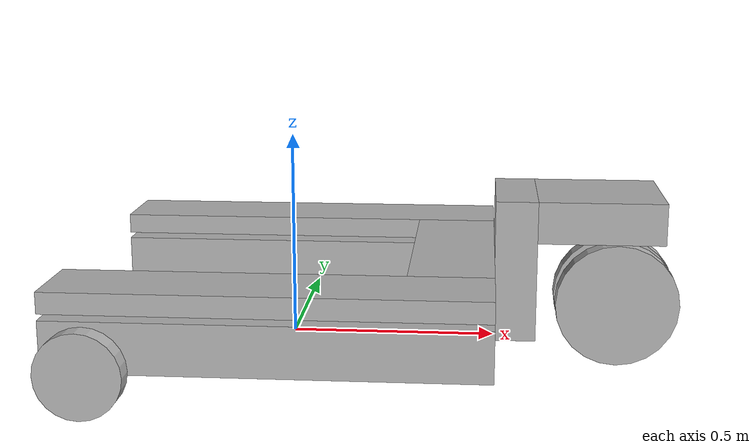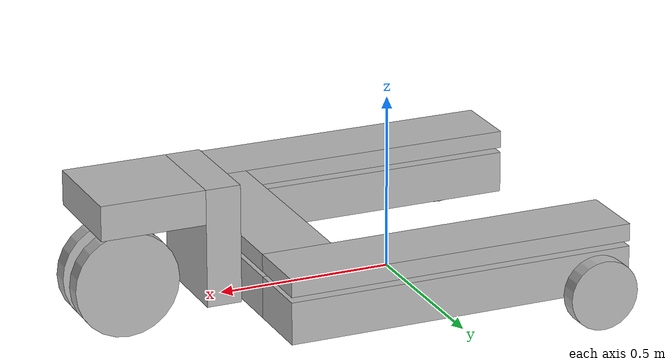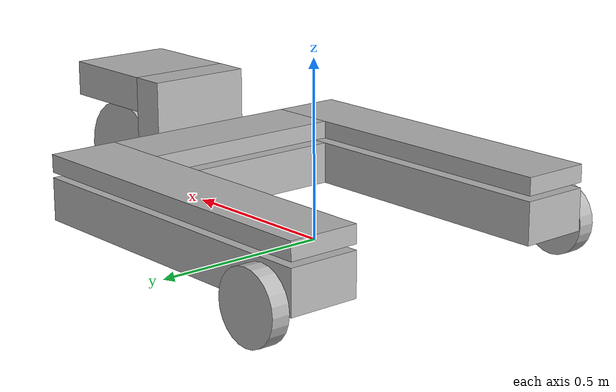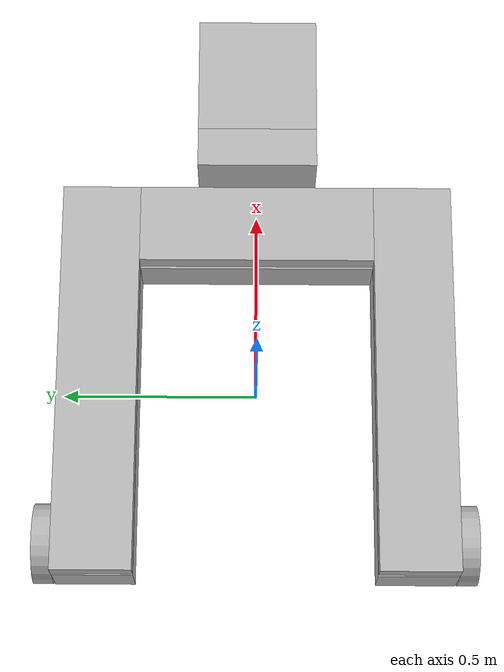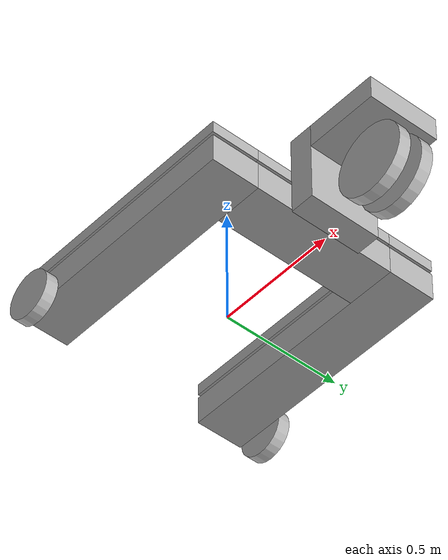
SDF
<?xml version='1.0'?>
<sdf version='1.4'>
	<model name="pallet_jack">
		<static>false</static>

		<!-- CHASSIS -->
		<link name='chassis'>
			<pose>0 0 .1 0 0 0</pose>

			<collision name='center_collision'>
				<pose>.4 0 0 0 0 0</pose>
				<geometry>
					<box>
						<size>.2 .6 .12</size>
					</box>
				</geometry>
			</collision>

			<visual name='center_visual'>
				<pose>.4 0 0 0 0 0</pose>
				<geometry>
					<box>
						<size>.2 .6 .12</size>
					</box>
				</geometry>
			</visual>

			<collision name='left_collision'>
				<pose>0 -.4 0 0 0 0</pose>
				<geometry>
					<box>
						<size>1 .2 .12</size>
					</box>
				</geometry>
			</collision>

			<visual name='left_visual'>
				<pose>0 -.4 0 0 0 0</pose>
				<geometry>
					<box>
						<size>1 .2 .12</size>
					</box>
				</geometry>
			</visual>

			<collision name='right_collision'>
				<pose>0 .4 0 0 0 0</pose>
				<geometry>
					<box>
						<size>1 .2 .12</size>
					</box>
				</geometry>
			</collision>

			<visual name='right_visual'>
				<pose>0 .4 0 0 0 0</pose>
				<geometry>
					<box>
						<size>1 .2 .12</size>
					</box>
				</geometry>
			</visual>

			<collision name = "front_collision">
				<pose>.55 0 .1 0 0 0</pose>
				<geometry>
					<box>
						<size>.1 .3 .34</size>
					</box>
				</geometry>
			</collision>

			<visual name = "front_visual">
				<pose>.55 0 .1 0 0 0</pose>
				<geometry>
					<box>
						<size>.1 .3 .34</size>
					</box>
				</geometry>
			</visual>

			<collision name = "front_up_collision">
				<pose>.75 0 .22 0 0 0</pose>
				<geometry>
					<box>
						<size>.3 .3 .1</size>
					</box>
				</geometry>
			</collision>

			<visual name = "front_up_visual">
				<pose>.75 0 .22 0 0 0</pose>
				<geometry>
					<box>
						<size>.3 .3 .1</size>
					</box>
				</geometry>
			</visual>

			<!-- Intertia values -->
			<inertial>
				<mass>100</mass>
			</inertial>

			<sensor type="gpu_ray" name="laser_sensor">
				<pose>.55 0 .35 0 0 3.14</pose>
				<visualize>true</visualize>
				<update_rate>40</update_rate>
				<ray>
					<scan>
						<horizontal>
							<samples>720</samples>
							<resolution>1</resolution>
							<min_angle>-1.570796</min_angle>
							<max_angle>1.570796</max_angle>
						</horizontal>
					</scan>
					<range>
						<min>0.10</min>
						<max>30.0</max>
						<resolution>0.01</resolution>
					</range>
					<noise>
						<type>gaussian</type>
						<mean>0.0</mean>
						<stddev>0.01</stddev>
					</noise>
				</ray>
				<plugin name="gazebo_ros_head_hokuyo_controller" filename="libgazebo_ros_gpu_laser.so">
					<topicName>/pallet_jack/laser/scan</topicName>
					<frameName>chassis</frameName>
				</plugin>
				<plugin name = "laser_plugin" filename = "liblaser_plugin.so">
				</plugin>
			</sensor>
		</link>

		<!--LIFT-->
		<link name = "lift">
			<pose> 0 0 .20 0 0 0</pose>
			<collision name='center_lift_collision'>
				<pose>.4 0 0 0 0 0</pose>
				<geometry>
					<box>
						<size>.2 .6 .05</size>
					</box>
				</geometry>
			</collision>

			<visual name='center_lift_visual'>
				<pose>.4 0 0 0 0 0</pose>
				<geometry>
					<box>
						<size>.2 .6 .05</size>
					</box>
				</geometry>
			</visual>

			<collision name='left_lift_collision'>
				<pose>0 -.4 0 0 0 0</pose>
				<geometry>
					<box>
						<size>1 .2 .05</size>
					</box>
				</geometry>
			</collision>

			<visual name='left_lift_visual'>
				<pose>0 -.4 0 0 0 0</pose>
				<geometry>
					<box>
						<size>1 .2 .05</size>
					</box>
				</geometry>
			</visual>

			<collision name='right_lift_collision'>
				<pose>0 .4 0 0 0 0</pose>
				<geometry>
					<box>
						<size>1 .2 .05</size>
					</box>
				</geometry>
			</collision>

			<visual name='right_lift_visual'>
				<pose>0 .4 0 0 0 0</pose>
				<geometry>
					<box>
						<size>1 .2 .05</size>
					</box>
				</geometry>
			</visual>

			<!-- Intertia values -->
			<inertial>
				<mass>10</mass>
			</inertial>
		</link>

		<!--BACK LEFT WHEEL-->
		<link name = "back_left_wheel">
			<pose>-.4 -.53 .05 0 1.5707 1.5707</pose>
			<collision name = "back_left_wheel_collision">
				<geometry>
					<cylinder>
						<radius>.1</radius>
						<length>.05</length>
					</cylinder>
				</geometry>
			</collision>

			<visual name = "back_left_wheel_visual">
				<geometry>
					<cylinder>
						<radius>.1</radius>
						<length>.05</length>
					</cylinder>
				</geometry>
			</visual>
			<!-- Intertia values -->
			<inertial>
				<mass>10</mass>
			</inertial>
		</link>

		<!--BACK RIGHT WHEEL-->
		<link name = "back_right_wheel">
			<pose>-.4 .53 .05 0 1.5707 1.5707</pose>
			<collision name = "back_right_wheel_collision">
				<geometry>
					<cylinder>
						<radius>.1</radius>
						<length>.05</length>
					</cylinder>
				</geometry>
			</collision>

			<visual name = "back_right_wheel_visual">
				<geometry>
					<cylinder>
						<radius>.1</radius>
						<length>.05</length>
					</cylinder>
				</geometry>
			</visual>

			<!-- Intertia values -->
			<inertial>
				<mass>10</mass>
			</inertial>
		</link>
		<!-- Wheel sources of movement -->

		<!--CENTER RIGHT WHEEL-->
		<link name = "center_right_wheel">
			<pose>.8 .05 .1 0 1.5707 1.5707</pose>
			<collision name = "center_right_wheel_collision">
				<geometry>
					<cylinder>
						<radius>.15</radius>
						<length>.05</length>
					</cylinder>
				</geometry>
			</collision>

			<visual name = "center_right_wheel_visual">
				<geometry>
					<cylinder>
						<radius>.15</radius>
						<length>.05</length>
					</cylinder>
				</geometry>
			</visual>

			<!-- Intertia values -->
			<inertial>
				<mass>10</mass>
			</inertial>
		</link>

		<!--CENTER LEFT WHEEL-->
		<link name = "center_left_wheel">
			<pose>.8 -.05 .1 0 1.5707 1.5707</pose>
			<collision name = "center_left_wheel_collision">
				<geometry>
					<cylinder>
						<radius>.15</radius>
						<length>.05</length>
					</cylinder>
				</geometry>
			</collision>

			<visual name = "center_left_wheel_visual">
				<geometry>
					<cylinder>
						<radius>.15</radius>
						<length>.05</length>
					</cylinder>
				</geometry>
			</visual>

			<!-- Intertia values -->
			<inertial>
				<mass>10</mass>
			</inertial>
		</link>

		<!-- this is a dummy link that is used in order to obtain 2 DOF
			 between the chassis and the center wheel -->
		<link name = "dummy_link">
			<pose>.8 0 .1 0 0 0</pose>
		</link>

		<!--CHASSIS BACK RIGHT WHEEL JOINT-->
		<joint type = "revolute" name = "chassis_backright_joint">
			<pose>0 0 -.1 0 0 0</pose>
			<child>back_right_wheel</child>
			<parent>chassis</parent>
			<axis>
			 	<xyz>0 1 0</xyz>
			</axis>
		</joint>

		<!--CHASSIS BACK LEFT WHEEL JOINT-->
		<joint type = "revolute" name = "chassis_backleft_joint">
			<pose>0 0 -.1 0 0 0</pose>
			<child>back_left_wheel</child>
			<parent>chassis</parent>
			<axis>
			 	<xyz>0 1 0</xyz>
			</axis>
		</joint>

		<!--CHASSIS CENTER WHEEL JOINT-->

		<joint type = "revolute" name = "chassis_dummy_joint">
			<pose>0 0 0 0 0 0</pose>
			<child>dummy_link</child>
			<parent>chassis</parent>
			<axis>
				<xyz>0 0 1</xyz>
        		<use_parent_model_frame>0</use_parent_model_frame>
        		<limit>
          			<lower>-1.5707</lower>
          			<upper>1.5707</upper>
        		</limit>
			</axis>
		</joint>

		<!-- JOINTS BETWEEN WHEELS AND DUMMY LINK -->
		<joint type = "revolute" name = "dummy_centerL_joint">
			<pose>0 0 0 0 0 0</pose>
			<child>center_left_wheel</child>
			<parent>dummy_link</parent>
			<axis>
			 	<xyz>0 0 1</xyz>
        		<use_parent_model_frame>0</use_parent_model_frame>

			</axis>
		</joint>

		<joint type = "revolute" name = "dummy_centerR_joint">
			<pose>0 0 0 0 0 0</pose>
			<child>center_right_wheel</child>
			<parent>dummy_link</parent>
			<axis>
			 	<xyz>0 0 1</xyz>
        		<use_parent_model_frame>0</use_parent_model_frame>
			</axis>
		</joint>

		<!-- JOINT BETWEEN CHASSIS AND LIFT-->
		<joint type = "prismatic" name = "chassis_lift_joint">
			<pose> 0 0 0 0 0 0 </pose>
			<child>lift</child>
			<parent>chassis</parent>
			<axis>
			 	<xyz>0 0 1</xyz>
        		<use_parent_model_frame>0</use_parent_model_frame>
        		<limit>
        			<lower>.02</lower>
        			<upper>1</upper>
        		</limit>
			</axis>
		</joint>

	<!-- Lift Plugin -->
	<plugin name="lift_plugin" filename="liblift_plugin.so"/>

	</model>
</sdf>
